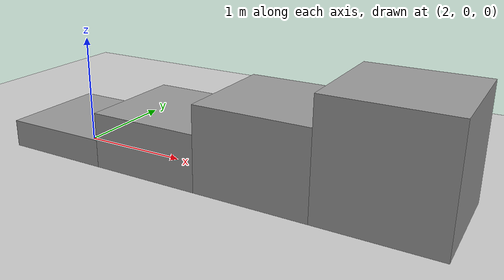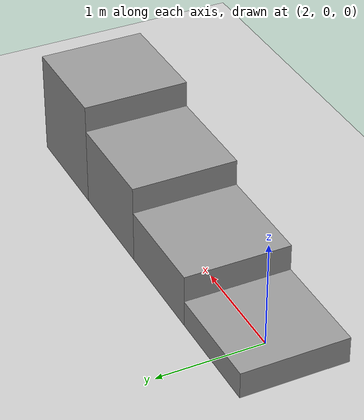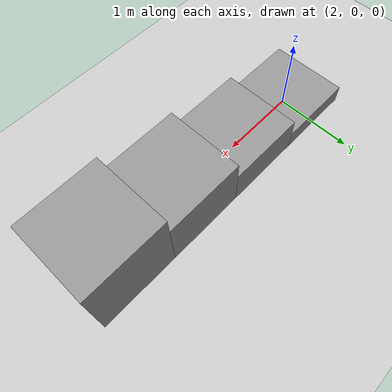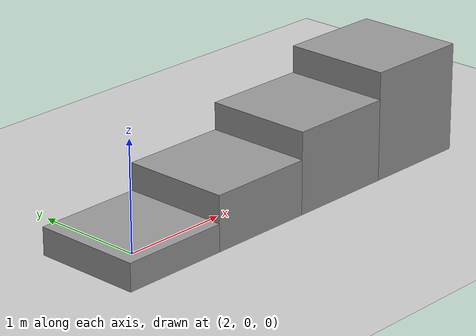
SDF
<?xml version="1.0"?>
<sdf version="1.5">
  <world name="default">
    <gui>
      <camera name="user_camera">
        <pose>-8.89 -14.33 12.97 0.0 0.58 0.84</pose>
        <track_visual>
          <static>true</static>
          <use_model_frame>true</use_model_frame>
          <xyz>-3 0 1</xyz>
          <inherit_yaw>true</inherit_yaw>
        </track_visual>
      </camera>
    </gui>
    <spherical_coordinates>
      <latitude_deg>48.878922</latitude_deg>
      <longitude_deg>2.367782</longitude_deg>
    </spherical_coordinates>
    <physics type="ode">
      <real_time_update_rate>1000</real_time_update_rate>
      <max_step_size>0.001</max_step_size>
      <real_time_factor>1.0</real_time_factor>
      <max_contacts>20</max_contacts>
      <gravity>0 0 -9.81</gravity>
      <magnetic_field>0.1062e-6 20.8038e-6 -43.2881e-6</magnetic_field>
      <ode>
        <solver>
          <type>world</type>
          <min_step_size>0.0001</min_step_size>
          <iters>50</iters>
          <precon_iters>0</precon_iters>
          <sor>1.4</sor>
          <use_dynamic_moi_rescaling>1</use_dynamic_moi_rescaling>
        </solver>
        <constraints>
          <cfm>0</cfm>
          <erp>0.2</erp>
          <contact_max_correcting_vel>100.0</contact_max_correcting_vel>
          <contact_surface_layer>0.001</contact_surface_layer>
        </constraints>
      </ode>
    </physics>
    <atmosphere type="adiabatic">
      <temperature>298.15</temperature>
      <pressure>101325</pressure>
      <temperature_gradient>-0.0065</temperature_gradient>
    </atmosphere>
    <!--Drone description-->
    <plugin name="fwman" filename="libsphinx_fwman.so">
      <spawn_point name="default">
        <pose>0 0 0.2 0 0 0</pose>
      </spawn_point>
    </plugin>
    <!--Wind description-->
    <plugin name="wind" filename="libsphinx_wind.so">
      <!-- Wind mean speed in m/s. -->
      <magnitude_mean>0.0</magnitude_mean>
      <!-- Wind mean direction in decimal degrees. -->
      <direction_mean>0.0</direction_mean>
      <!-- Wind mean elevation in decimal degrees. -->
      <elevation_mean>0.0</elevation_mean>
      <!-- Lowpass filter time characteristics in seconds.
              A value of 0 seconds deactivate the filter. -->
      <magnitude_time_for_rise>10.0</magnitude_time_for_rise>
      <direction_time_for_rise>30.0</direction_time_for_rise>
      <elevation_time_for_rise>0.0</elevation_time_for_rise>
      <!-- Wind expressions where "val" is the mean value. -->
      <magnitude_expr>val*(1+0.05*sin(2*pi*time/15))</magnitude_expr>
      <direction_expr>360*time/60</direction_expr>
      <elevation_expr>0.03*noise()</elevation_expr>
    </plugin>
    <!--Scene description-->
    <include>
      <uri>model://sun</uri>
    </include>
    <include>
      <uri>model://ground_plane</uri>
    </include>

    <model name='unit_box_0'>
      <pose>2 0 0.125 0 -0 0</pose>
      <link name='link'>
        <collision name='collision'>
          <geometry>
            <box>
              <size>1 1 0.25</size>
            </box>
          </geometry>
          <max_contacts>10</max_contacts>
          <surface>
            <contact>
              <ode/>
            </contact>
            <bounce/>
            <friction>
              <torsional>
                <ode/>
              </torsional>
              <ode/>
            </friction>
          </surface>
        </collision>
        <visual name='visual'>
          <geometry>
            <box>
              <size>1 1 0.25</size>
            </box>
          </geometry>
          <material>
            <script>
              <name>Gazebo/Grey</name>
              <uri>file://media/materials/scripts/gazebo.material</uri>
            </script>
          </material>
        </visual>
        <static>true</static>
      </link>
    </model>

    <model name='unit_box_1'>
      <pose>3 0 0.25 0 -0 0</pose>
      <link name='link'>
        <collision name='collision'>
          <geometry>
            <box>
              <size>1 1 0.5</size>
            </box>
          </geometry>
          <max_contacts>10</max_contacts>
          <surface>
            <contact>
              <ode/>
            </contact>
            <bounce/>
            <friction>
              <torsional>
                <ode/>
              </torsional>
              <ode/>
            </friction>
          </surface>
        </collision>
        <visual name='visual'>
          <geometry>
            <box>
              <size>1 1 0.5</size>
            </box>
          </geometry>
          <material>
            <script>
              <name>Gazebo/Grey</name>
              <uri>file://media/materials/scripts/gazebo.material</uri>
            </script>
          </material>
        </visual>
        <static>true</static>
      </link>
    </model>

    <model name='unit_box_2'>
      <pose>4 0 0.375 0 -0 0</pose>
      <link name='link'>
        <collision name='collision'>
          <geometry>
            <box>
              <size>1 1 0.75</size>
            </box>
          </geometry>
          <max_contacts>10</max_contacts>
          <surface>
            <contact>
              <ode/>
            </contact>
            <bounce/>
            <friction>
              <torsional>
                <ode/>
              </torsional>
              <ode/>
            </friction>
          </surface>
        </collision>
        <visual name='visual'>
          <geometry>
            <box>
              <size>1 1 0.75</size>
            </box>
          </geometry>
          <material>
            <script>
              <name>Gazebo/Grey</name>
              <uri>file://media/materials/scripts/gazebo.material</uri>
            </script>
          </material>
        </visual>
        <static>true</static>
      </link>
    </model>

    <model name='unit_box_3'>
      <pose>5 0 0.5 0 -0 0</pose>
      <link name='link'>
        <collision name='collision'>
          <geometry>
            <box>
              <size>1 1 1</size>
            </box>
          </geometry>
          <max_contacts>10</max_contacts>
          <surface>
            <contact>
              <ode/>
            </contact>
            <bounce/>
            <friction>
              <torsional>
                <ode/>
              </torsional>
              <ode/>
            </friction>
          </surface>
        </collision>
        <visual name='visual'>
          <geometry>
            <box>
              <size>1 1 1</size>
            </box>
          </geometry>
          <material>
            <script>
              <name>Gazebo/Grey</name>
              <uri>file://media/materials/scripts/gazebo.material</uri>
            </script>
          </material>
        </visual>
        <static>true</static>
      </link>
    </model>

  </world>
</sdf>
